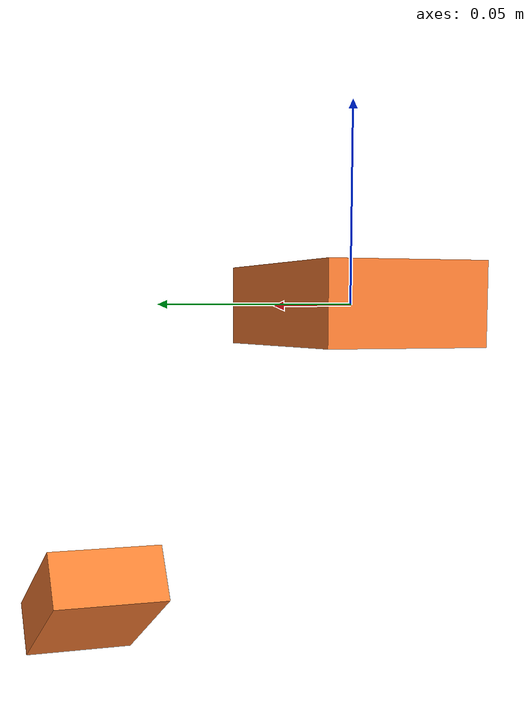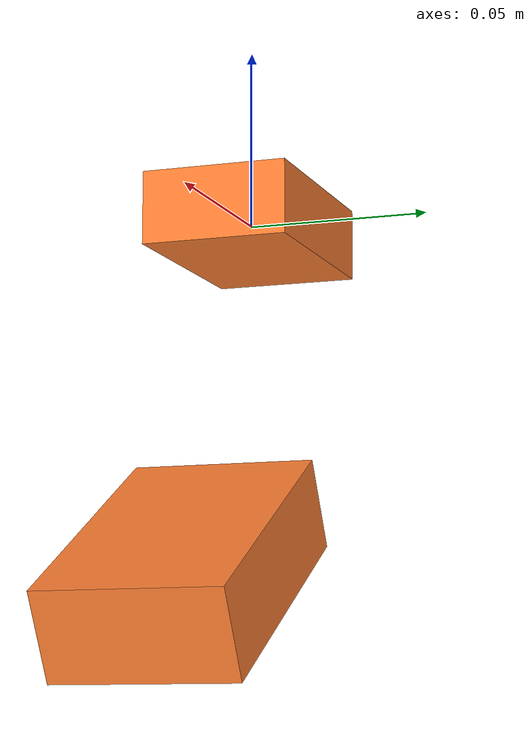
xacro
<?xml version="1.0"?>
<robot name="robot" xmlns:xacro="http://ros.org/wiki/xacro">

  <xacro:arg name="namespace" default="none"/>
  <xacro:property name="namespace" value="$(arg namespace)"/>

  <xacro:arg name="camera_link" default="none"/>
  <xacro:property name="camera_link" value="$(arg camera_link)" />

  <xacro:arg name="base_link" default="base_link"/>
  <xacro:property name="base_link" value="$(arg base_link)" />

  <material name="orange">
    <color rgba="1.0 0.5 0.2 1" />
  </material>

  <material name="gray">
    <color rgba="0.2 0.2 0.2 1" />
  </material>

  <link name="${base_link}">
    <visual>
      <origin xyz="0.0 0.0 0.0" />
      <geometry>
        <box size="0.06 0.04 0.02" />
      </geometry>
      <material name="orange" />
    </visual>
  </link>

  <link name="${camera_link}">
    <visual>
      <origin xyz="0.0 0.0 0.0" />
      <geometry>
        <box size="0.06 0.04 0.02" />
      </geometry>
      <material name="orange" />
    </visual>
  </link>

  <link name="${namespace}/base_link" />

  <joint name="${namespace}/base_link_joint" type="fixed">
    <parent link="${base_link}" />
    <child link="${namespace}/base_link" />
    <origin xyz="0 0 0" rpy="0 0 0" />
  </joint>

  <joint name="${namespace}/camera_link_joint" type="fixed">
    <parent link="${namespace}/base_link" />
    <child link="${camera_link}" />
    <origin xyz="0.135 0.035 -0.105" rpy="0 0.52 0." />
  </joint>

</robot>
